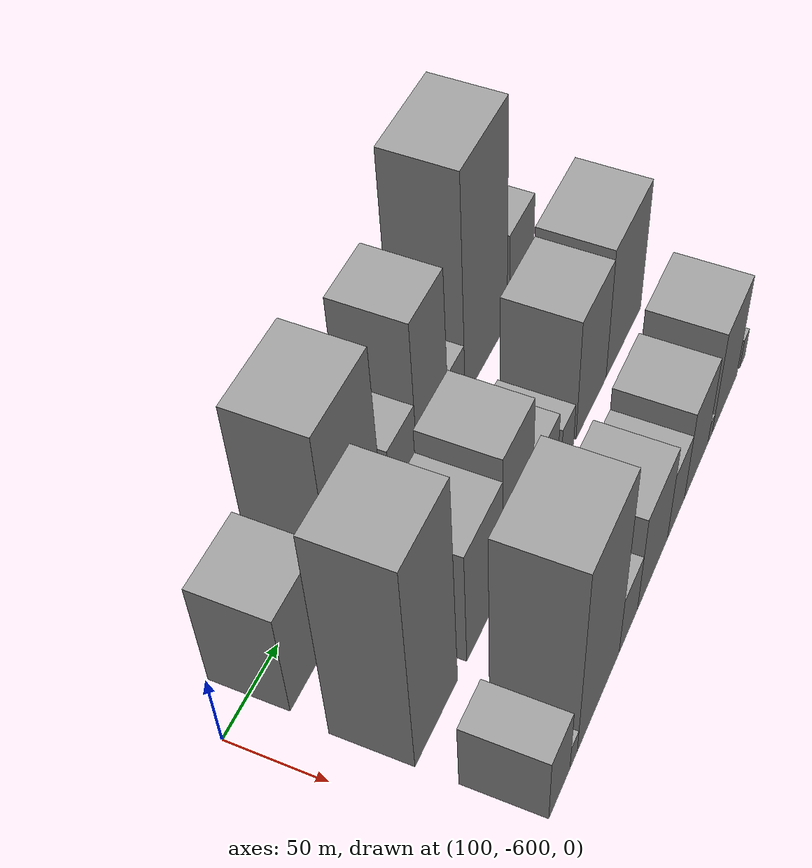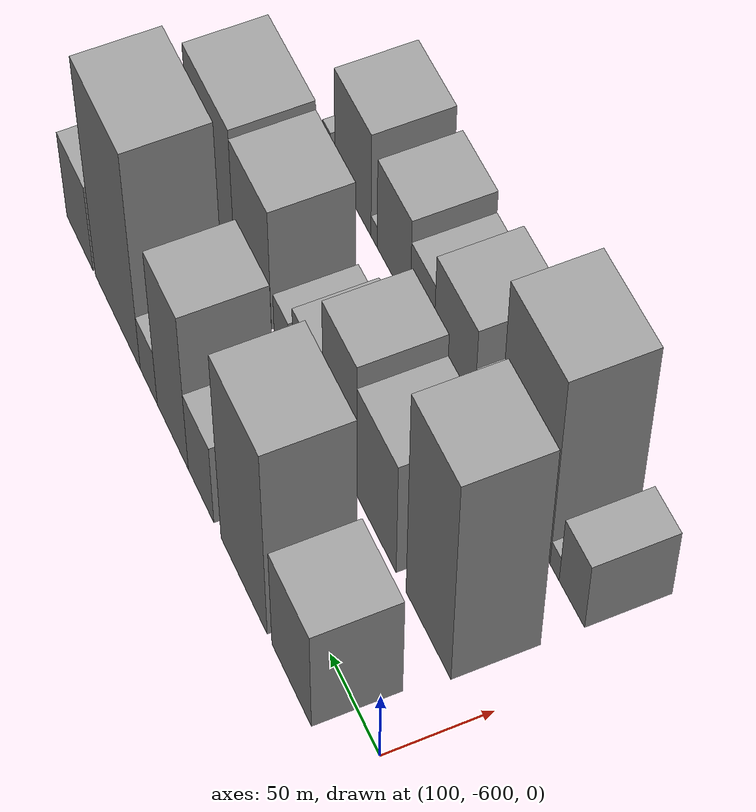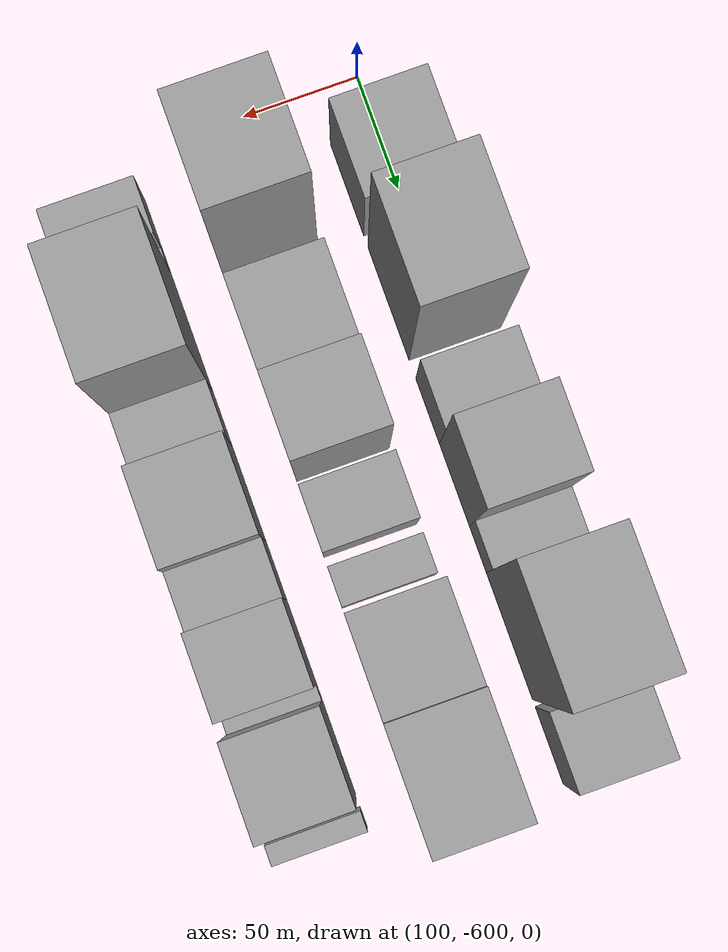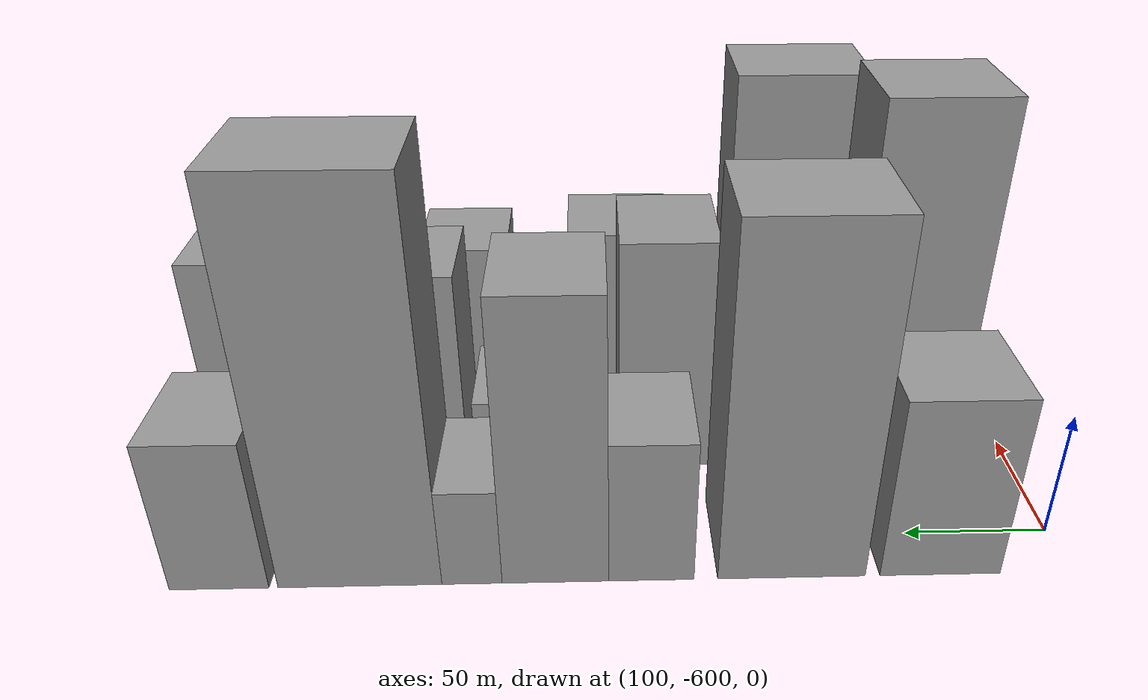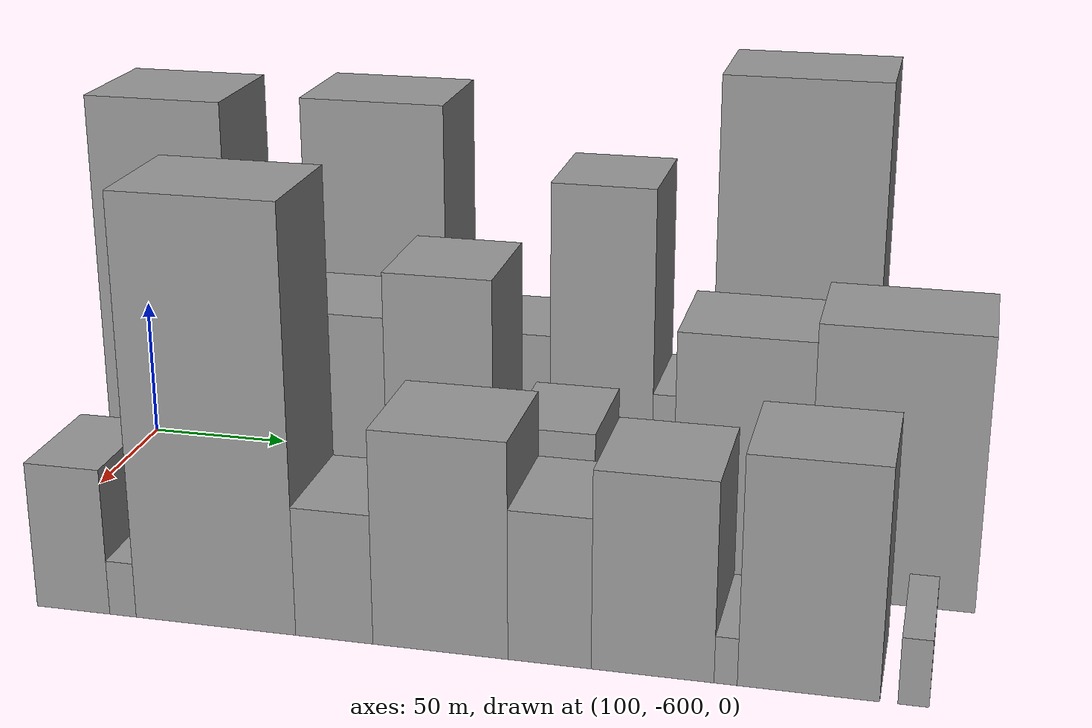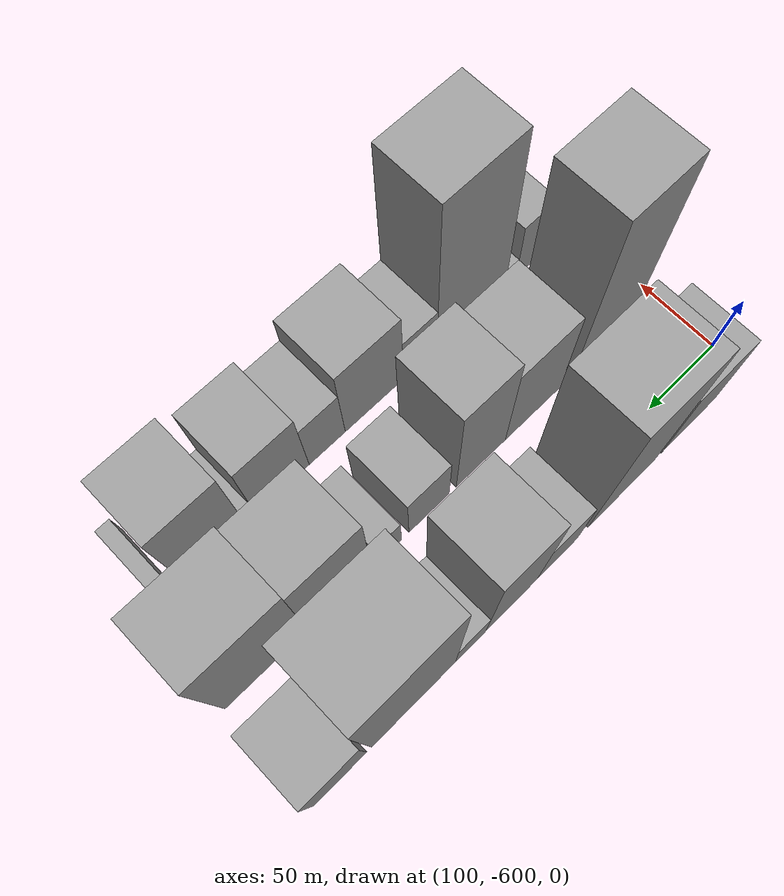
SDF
<sdf version="1.6">
 <world name="default">
  <model name="building_1">
   <static>1</static>
   <pose>100.0000 -556.5266 0 0.000000 0.000000 0.000000</pose>
   <link name="link">
    <pose>0 0 36.00 0 0 0</pose>
    <collision name="collision"><geometry><box><size>40.0000 40.9467 72.0000</size></box></geometry></collision>
    <visual name="visual">
     <cast_shadows>0</cast_shadows>
     <geometry><box><size>40.0000 40.9467 72.0000</size></box></geometry>
     <material>
      <script>
       <uri>model://grey_wall/materials/scripts</uri>
       <uri>model://grey_wall/materials/textures</uri>
       <name>vrc/grey_wall</name>
      </script>
     </material>
    </visual>
   </link>
  </model>
  <model name="building_2">
   <static>1</static>
   <pose>100.0000 -506.0978 0 0.000000 0.000000 0.000000</pose>
   <link name="link">
    <pose>0 0 67.50 0 0 0</pose>
    <collision name="collision"><geometry><box><size>40.0000 49.9109 135.0000</size></box></geometry></collision>
    <visual name="visual">
     <cast_shadows>0</cast_shadows>
     <geometry><box><size>40.0000 49.9109 135.0000</size></box></geometry>
     <material>
      <script>
       <uri>model://grey_wall/materials/scripts</uri>
       <uri>model://grey_wall/materials/textures</uri>
       <name>vrc/grey_wall</name>
      </script>
     </material>
    </visual>
   </link>
  </model>
  <model name="building_3">
   <static>1</static>
   <pose>100.0000 -458.8349 0 0.000000 0.000000 0.000000</pose>
   <link name="link">
    <pose>0 0 28.50 0 0 0</pose>
    <collision name="collision"><geometry><box><size>40.0000 28.6148 57.0000</size></box></geometry></collision>
    <visual name="visual">
     <cast_shadows>0</cast_shadows>
     <geometry><box><size>40.0000 28.6148 57.0000</size></box></geometry>
     <material>
      <script>
       <uri>model://grey_wall/materials/scripts</uri>
       <uri>model://grey_wall/materials/textures</uri>
       <name>vrc/grey_wall</name>
      </script>
     </material>
    </visual>
   </link>
  </model>
  <model name="building_4">
   <static>1</static>
   <pose>100.0000 -426.6664 0 0.000000 0.000000 0.000000</pose>
   <link name="link">
    <pose>0 0 55.50 0 0 0</pose>
    <collision name="collision"><geometry><box><size>40.0000 35.7224 111.0000</size></box></geometry></collision>
    <visual name="visual">
     <cast_shadows>0</cast_shadows>
     <geometry><box><size>40.0000 35.7224 111.0000</size></box></geometry>
     <material>
      <script>
       <uri>model://grey_wall/materials/scripts</uri>
       <uri>model://grey_wall/materials/textures</uri>
       <name>vrc/grey_wall</name>
      </script>
     </material>
    </visual>
   </link>
  </model>
  <model name="building_5">
   <static>1</static>
   <pose>100.0000 -398.7669 0 0.000000 0.000000 0.000000</pose>
   <link name="link">
    <pose>0 0 19.50 0 0 0</pose>
    <collision name="collision"><geometry><box><size>40.0000 20.0766 39.0000</size></box></geometry></collision>
    <visual name="visual">
     <cast_shadows>0</cast_shadows>
     <geometry><box><size>40.0000 20.0766 39.0000</size></box></geometry>
     <material>
      <script>
       <uri>model://grey_wall/materials/scripts</uri>
       <uri>model://grey_wall/materials/textures</uri>
       <name>vrc/grey_wall</name>
      </script>
     </material>
    </visual>
   </link>
  </model>
  <model name="building_6">
   <static>1</static>
   <pose>100.0000 -361.5267 0 0.000000 0.000000 0.000000</pose>
   <link name="link">
    <pose>0 0 75.00 0 0 0</pose>
    <collision name="collision"><geometry><box><size>40.0000 54.4038 150.0000</size></box></geometry></collision>
    <visual name="visual">
     <cast_shadows>0</cast_shadows>
     <geometry><box><size>40.0000 54.4038 150.0000</size></box></geometry>
     <material>
      <script>
       <uri>model://grey_wall/materials/scripts</uri>
       <uri>model://grey_wall/materials/textures</uri>
       <name>vrc/grey_wall</name>
      </script>
     </material>
    </visual>
   </link>
  </model>
  <model name="building_7">
   <static>1</static>
   <pose>100.0000 -314.9015 0 0.000000 0.000000 0.000000</pose>
   <link name="link">
    <pose>0 0 30.00 0 0 0</pose>
    <collision name="collision"><geometry><box><size>40.0000 32.8466 60.0000</size></box></geometry></collision>
    <visual name="visual">
     <cast_shadows>0</cast_shadows>
     <geometry><box><size>40.0000 32.8466 60.0000</size></box></geometry>
     <material>
      <script>
       <uri>model://grey_wall/materials/scripts</uri>
       <uri>model://grey_wall/materials/textures</uri>
       <name>vrc/grey_wall</name>
      </script>
     </material>
    </visual>
   </link>
  </model>
  <model name="building_32">
   <static>1</static>
   <pose>160.0000 -557.7676 0 0.000000 0.000000 0.000000</pose>
   <link name="link">
    <pose>0 0 73.50 0 0 0</pose>
    <collision name="collision"><geometry><box><size>40.0000 44.4647 147.0000</size></box></geometry></collision>
    <visual name="visual">
     <cast_shadows>0</cast_shadows>
     <geometry><box><size>40.0000 44.4647 147.0000</size></box></geometry>
     <material>
      <script>
       <uri>model://grey_wall/materials/scripts</uri>
       <uri>model://grey_wall/materials/textures</uri>
       <name>vrc/grey_wall</name>
      </script>
     </material>
    </visual>
   </link>
  </model>
  <model name="building_33">
   <static>1</static>
   <pose>160.0000 -505.2529 0 0.000000 0.000000 0.000000</pose>
   <link name="link">
    <pose>0 0 40.50 0 0 0</pose>
    <collision name="collision"><geometry><box><size>40.0000 40.5649 81.0000</size></box></geometry></collision>
    <visual name="visual">
     <cast_shadows>0</cast_shadows>
     <geometry><box><size>40.0000 40.5649 81.0000</size></box></geometry>
     <material>
      <script>
       <uri>model://grey_wall/materials/scripts</uri>
       <uri>model://grey_wall/materials/textures</uri>
       <name>vrc/grey_wall</name>
      </script>
     </material>
    </visual>
   </link>
  </model>
  <model name="building_34">
   <static>1</static>
   <pose>160.0000 -467.3385 0 0.000000 0.000000 0.000000</pose>
   <link name="link">
    <pose>0 0 48.00 0 0 0</pose>
    <collision name="collision"><geometry><box><size>40.0000 35.2639 96.0000</size></box></geometry></collision>
    <visual name="visual">
     <cast_shadows>0</cast_shadows>
     <geometry><box><size>40.0000 35.2639 96.0000</size></box></geometry>
     <material>
      <script>
       <uri>model://grey_wall/materials/scripts</uri>
       <uri>model://grey_wall/materials/textures</uri>
       <name>vrc/grey_wall</name>
      </script>
     </material>
    </visual>
   </link>
  </model>
  <model name="building_35">
   <static>1</static>
   <pose>160.0000 -430.7589 0 0.000000 0.000000 0.000000</pose>
   <link name="link">
    <pose>0 0 24.00 0 0 0</pose>
    <collision name="collision"><geometry><box><size>40.0000 27.8953 48.0000</size></box></geometry></collision>
    <visual name="visual">
     <cast_shadows>0</cast_shadows>
     <geometry><box><size>40.0000 27.8953 48.0000</size></box></geometry>
     <material>
      <script>
       <uri>model://grey_wall/materials/scripts</uri>
       <uri>model://grey_wall/materials/textures</uri>
       <name>vrc/grey_wall</name>
      </script>
     </material>
    </visual>
   </link>
  </model>
  <model name="building_36">
   <static>1</static>
   <pose>160.0000 -403.3605 0 0.000000 0.000000 0.000000</pose>
   <link name="link">
    <pose>0 0 15.00 0 0 0</pose>
    <collision name="collision"><geometry><box><size>40.0000 16.9014 30.0000</size></box></geometry></collision>
    <visual name="visual">
     <cast_shadows>0</cast_shadows>
     <geometry><box><size>40.0000 16.9014 30.0000</size></box></geometry>
     <material>
      <script>
       <uri>model://grey_wall/materials/scripts</uri>
       <uri>model://grey_wall/materials/textures</uri>
       <name>vrc/grey_wall</name>
      </script>
     </material>
    </visual>
   </link>
  </model>
  <model name="building_37">
   <static>1</static>
   <pose>160.0000 -370.7486 0 0.000000 0.000000 0.000000</pose>
   <link name="link">
    <pose>0 0 42.00 0 0 0</pose>
    <collision name="collision"><geometry><box><size>40.0000 42.3224 84.0000</size></box></geometry></collision>
    <visual name="visual">
     <cast_shadows>0</cast_shadows>
     <geometry><box><size>40.0000 42.3224 84.0000</size></box></geometry>
     <material>
      <script>
       <uri>model://grey_wall/materials/scripts</uri>
       <uri>model://grey_wall/materials/textures</uri>
       <name>vrc/grey_wall</name>
      </script>
     </material>
    </visual>
   </link>
  </model>
  <model name="building_38">
   <static>1</static>
   <pose>160.0000 -323.6521 0 0.000000 0.000000 0.000000</pose>
   <link name="link">
    <pose>0 0 45.00 0 0 0</pose>
    <collision name="collision"><geometry><box><size>40.0000 51.8707 90.0000</size></box></geometry></collision>
    <visual name="visual">
     <cast_shadows>0</cast_shadows>
     <geometry><box><size>40.0000 51.8707 90.0000</size></box></geometry>
     <material>
      <script>
       <uri>model://grey_wall/materials/scripts</uri>
       <uri>model://grey_wall/materials/textures</uri>
       <name>vrc/grey_wall</name>
      </script>
     </material>
    </visual>
   </link>
  </model>
  <model name="building_64">
   <static>1</static>
   <pose>220.0000 -567.9774 0 0.000000 0.000000 0.000000</pose>
   <link name="link">
    <pose>0 0 24.00 0 0 0</pose>
    <collision name="collision"><geometry><box><size>40.0000 24.0452 48.0000</size></box></geometry></collision>
    <visual name="visual">
     <cast_shadows>0</cast_shadows>
     <geometry><box><size>40.0000 24.0452 48.0000</size></box></geometry>
     <material>
      <script>
       <uri>model://grey_wall/materials/scripts</uri>
       <uri>model://grey_wall/materials/textures</uri>
       <name>vrc/grey_wall</name>
      </script>
     </material>
    </visual>
   </link>
  </model>
  <model name="building_65">
   <static>1</static>
   <pose>220.0000 -551.6190 0 0.000000 0.000000 0.000000</pose>
   <link name="link">
    <pose>0 0 9.00 0 0 0</pose>
    <collision name="collision"><geometry><box><size>40.0000 8.6716 18.0000</size></box></geometry></collision>
    <visual name="visual">
     <cast_shadows>0</cast_shadows>
     <geometry><box><size>40.0000 8.6716 18.0000</size></box></geometry>
     <material>
      <script>
       <uri>model://grey_wall/materials/scripts</uri>
       <uri>model://grey_wall/materials/textures</uri>
       <name>vrc/grey_wall</name>
      </script>
     </material>
    </visual>
   </link>
  </model>
  <model name="building_66">
   <static>1</static>
   <pose>220.0000 -521.6139 0 0.000000 0.000000 0.000000</pose>
   <link name="link">
    <pose>0 0 67.50 0 0 0</pose>
    <collision name="collision"><geometry><box><size>40.0000 51.3387 135.0000</size></box></geometry></collision>
    <visual name="visual">
     <cast_shadows>0</cast_shadows>
     <geometry><box><size>40.0000 51.3387 135.0000</size></box></geometry>
     <material>
      <script>
       <uri>model://grey_wall/materials/scripts</uri>
       <uri>model://grey_wall/materials/textures</uri>
       <name>vrc/grey_wall</name>
      </script>
     </material>
    </visual>
   </link>
  </model>
  <model name="building_67">
   <static>1</static>
   <pose>220.0000 -483.8521 0 0.000000 0.000000 0.000000</pose>
   <link name="link">
    <pose>0 0 21.00 0 0 0</pose>
    <collision name="collision"><geometry><box><size>40.0000 24.1848 42.0000</size></box></geometry></collision>
    <visual name="visual">
     <cast_shadows>0</cast_shadows>
     <geometry><box><size>40.0000 24.1848 42.0000</size></box></geometry>
     <material>
      <script>
       <uri>model://grey_wall/materials/scripts</uri>
       <uri>model://grey_wall/materials/textures</uri>
       <name>vrc/grey_wall</name>
      </script>
     </material>
    </visual>
   </link>
  </model>
  <model name="building_68">
   <static>1</static>
   <pose>220.0000 -451.1119 0 0.000000 0.000000 0.000000</pose>
   <link name="link">
    <pose>0 0 34.50 0 0 0</pose>
    <collision name="collision"><geometry><box><size>40.0000 41.2957 69.0000</size></box></geometry></collision>
    <visual name="visual">
     <cast_shadows>0</cast_shadows>
     <geometry><box><size>40.0000 41.2957 69.0000</size></box></geometry>
     <material>
      <script>
       <uri>model://grey_wall/materials/scripts</uri>
       <uri>model://grey_wall/materials/textures</uri>
       <name>vrc/grey_wall</name>
      </script>
     </material>
    </visual>
   </link>
  </model>
  <model name="building_69">
   <static>1</static>
   <pose>220.0000 -418.0284 0 0.000000 0.000000 0.000000</pose>
   <link name="link">
    <pose>0 0 24.00 0 0 0</pose>
    <collision name="collision"><geometry><box><size>40.0000 24.8711 48.0000</size></box></geometry></collision>
    <visual name="visual">
     <cast_shadows>0</cast_shadows>
     <geometry><box><size>40.0000 24.8711 48.0000</size></box></geometry>
     <material>
      <script>
       <uri>model://grey_wall/materials/scripts</uri>
       <uri>model://grey_wall/materials/textures</uri>
       <name>vrc/grey_wall</name>
      </script>
     </material>
    </visual>
   </link>
  </model>
  <model name="building_70">
   <static>1</static>
   <pose>220.0000 -387.6338 0 0.000000 0.000000 0.000000</pose>
   <link name="link">
    <pose>0 0 31.50 0 0 0</pose>
    <collision name="collision"><geometry><box><size>40.0000 35.9181 63.0000</size></box></geometry></collision>
    <visual name="visual">
     <cast_shadows>0</cast_shadows>
     <geometry><box><size>40.0000 35.9181 63.0000</size></box></geometry>
     <material>
      <script>
       <uri>model://grey_wall/materials/scripts</uri>
       <uri>model://grey_wall/materials/textures</uri>
       <name>vrc/grey_wall</name>
      </script>
     </material>
    </visual>
   </link>
  </model>
  <model name="building_71">
   <static>1</static>
   <pose>220.0000 -366.3357 0 0.000000 0.000000 0.000000</pose>
   <link name="link">
    <pose>0 0 7.50 0 0 0</pose>
    <collision name="collision"><geometry><box><size>40.0000 6.6781 15.0000</size></box></geometry></collision>
    <visual name="visual">
     <cast_shadows>0</cast_shadows>
     <geometry><box><size>40.0000 6.6781 15.0000</size></box></geometry>
     <material>
      <script>
       <uri>model://grey_wall/materials/scripts</uri>
       <uri>model://grey_wall/materials/textures</uri>
       <name>vrc/grey_wall</name>
      </script>
     </material>
    </visual>
   </link>
  </model>
  <model name="building_72">
   <static>1</static>
   <pose>220.0000 -342.8328 0 0.000000 0.000000 0.000000</pose>
   <link name="link">
    <pose>0 0 36.00 0 0 0</pose>
    <collision name="collision"><geometry><box><size>40.0000 40.3276 72.0000</size></box></geometry></collision>
    <visual name="visual">
     <cast_shadows>0</cast_shadows>
     <geometry><box><size>40.0000 40.3276 72.0000</size></box></geometry>
     <material>
      <script>
       <uri>model://grey_wall/materials/scripts</uri>
       <uri>model://grey_wall/materials/textures</uri>
       <name>vrc/grey_wall</name>
      </script>
     </material>
    </visual>
   </link>
  </model>
  <model name="building_73">
   <static>1</static>
   <pose>220.0000 -313.3248 0 0.000000 0.000000 0.000000</pose>
   <link name="link">
    <pose>0 0 10.50 0 0 0</pose>
    <collision name="collision"><geometry><box><size>40.0000 8.6884 21.0000</size></box></geometry></collision>
    <visual name="visual">
     <cast_shadows>0</cast_shadows>
     <geometry><box><size>40.0000 8.6884 21.0000</size></box></geometry>
     <material>
      <script>
       <uri>model://grey_wall/materials/scripts</uri>
       <uri>model://grey_wall/materials/textures</uri>
       <name>vrc/grey_wall</name>
      </script>
     </material>
    </visual>
   </link>
  </model>
 </world>
</sdf>
